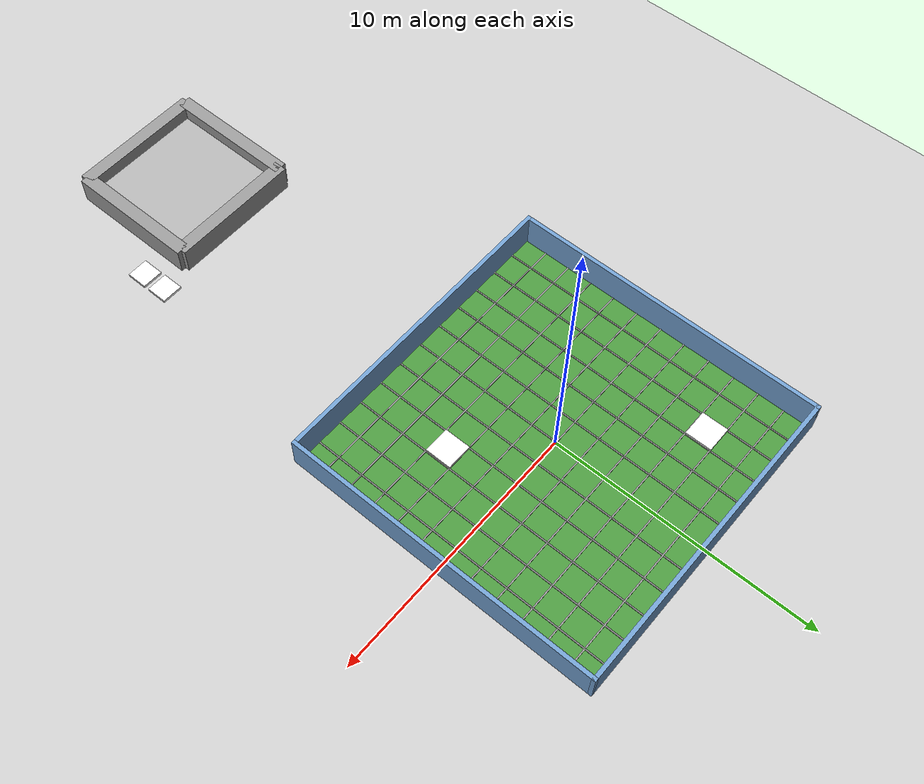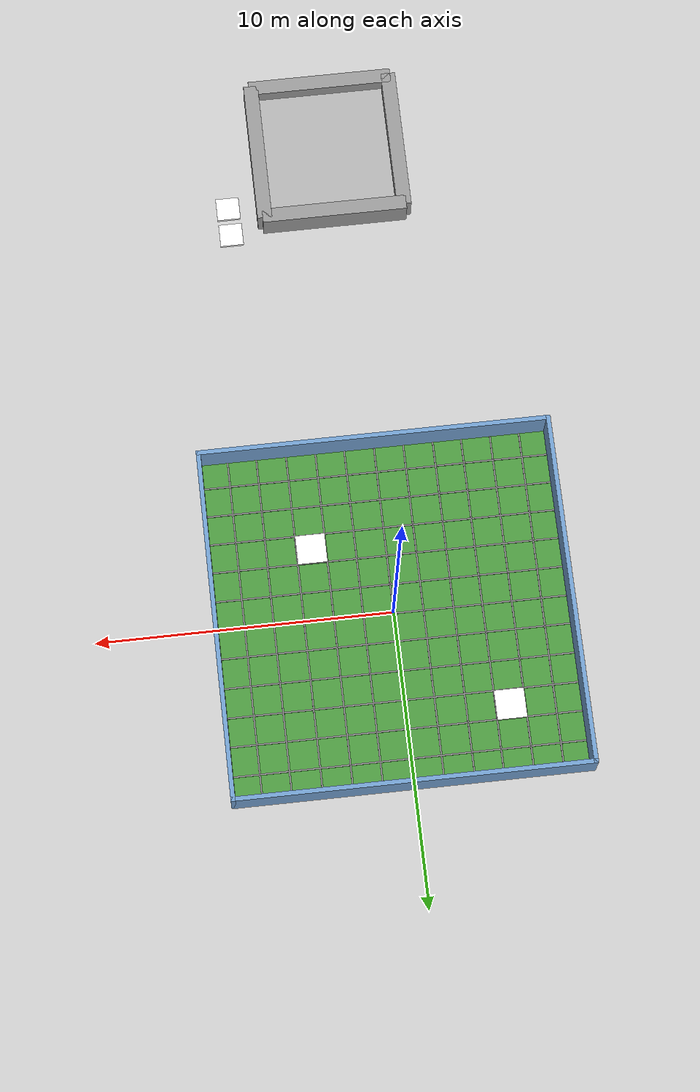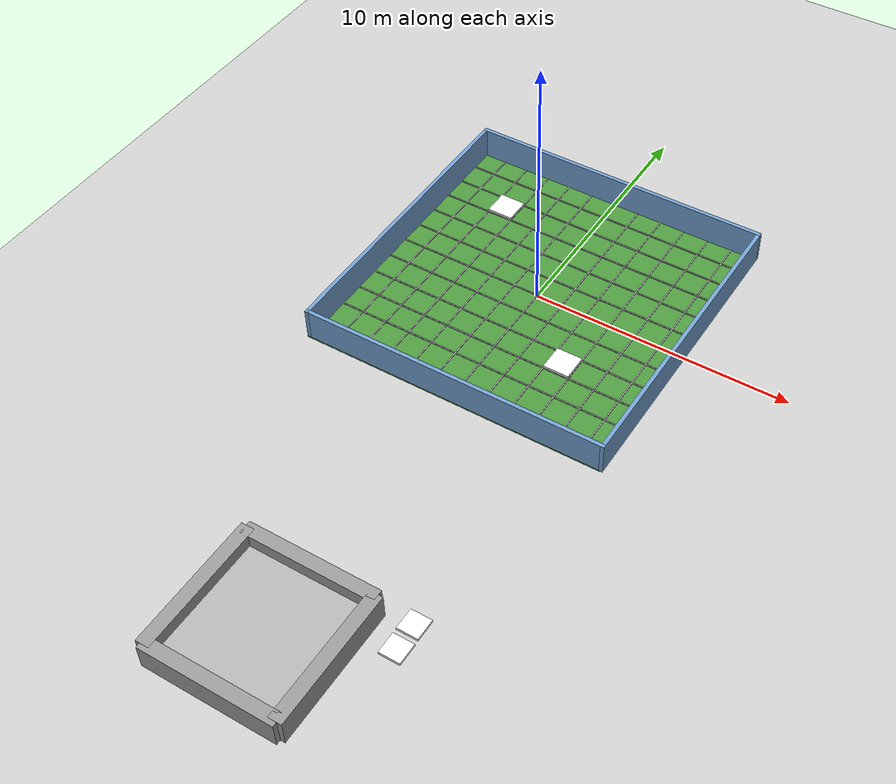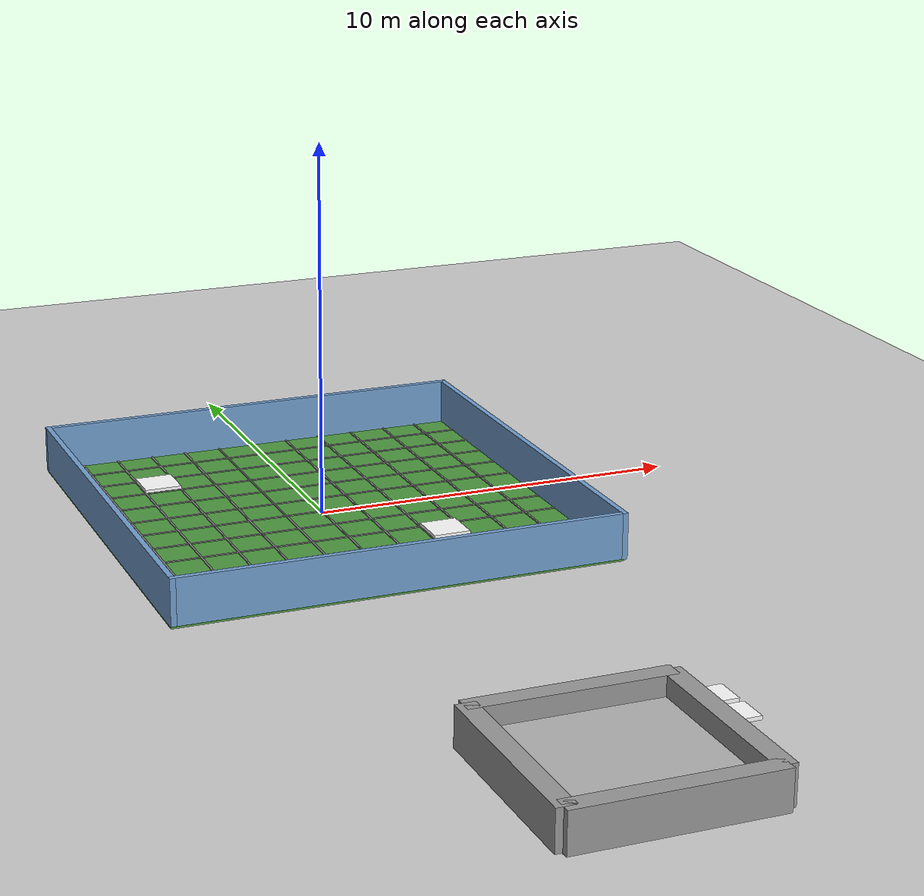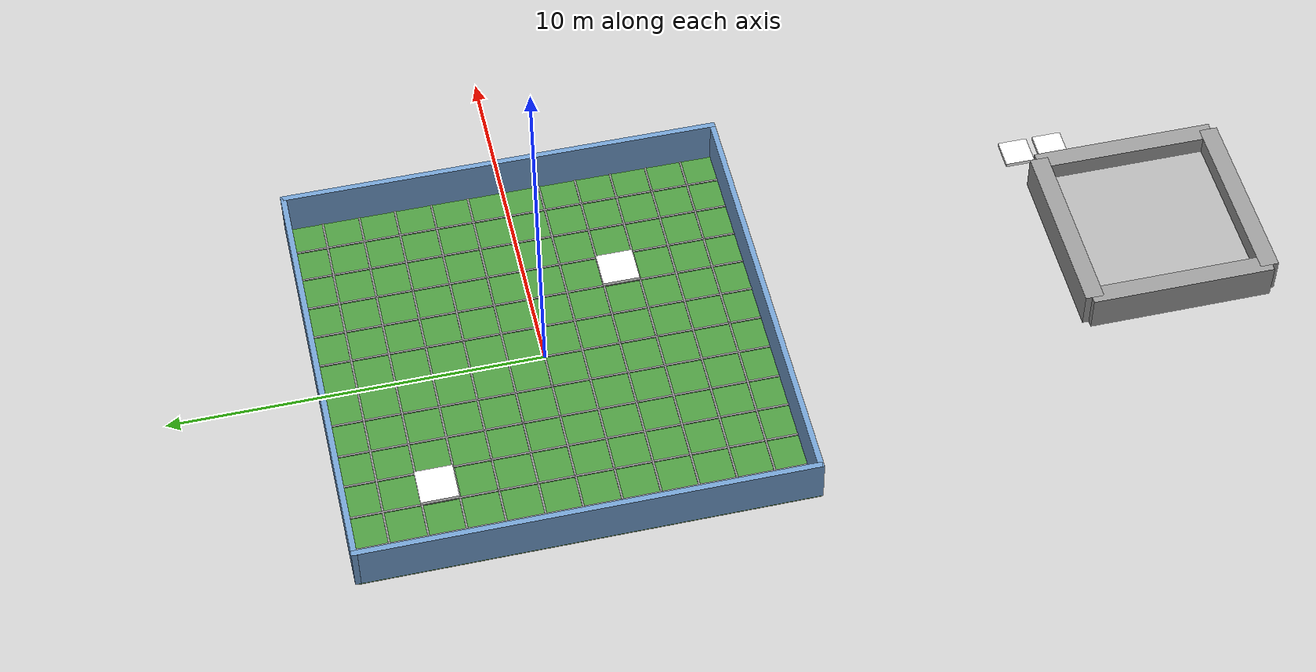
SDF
<sdf version="1.7">
 <world name="default">
  <light name="sun" type="directional">
   <pose>0 0 10 0 -0 0</pose>
   <diffuse>0.8 0.8 0.8 1</diffuse>
   <specular>0.2 0.2 0.2 1</specular>
   <attenuation>
    <range>1000</range>
    <constant>0.9</constant>
    <linear>0.01</linear>
    <quadratic>0.001</quadratic>
   </attenuation>
   <direction>-0.5 0.1 -0.9</direction>
   <spot><inner_angle>0</inner_angle><outer_angle>0</outer_angle><falloff>0</falloff></spot>
  </light>
  <model name="ground_plane">
   <static>1</static>
   <link name="link">
    <collision name="collision">
     <geometry><plane><normal>0 0 1</normal><size>100 100</size></plane></geometry>
     <surface><friction><ode><mu>100</mu><mu2>50</mu2></ode></friction></surface>
    </collision>
    <visual name="visual">
     <cast_shadows>0</cast_shadows>
     <geometry><plane><normal>0 0 1</normal><size>100 100</size></plane></geometry>
     <material>
      <script><uri>file://media/materials/scripts/gazebo.material</uri><name>Gazebo/Grey</name></script>
     </material>
    </visual>
   </link>
  </model>
  <gravity>0 0 -9.8</gravity>
  <magnetic_field>6e-06 2.3e-05 -4.2e-05</magnetic_field>
  <atmosphere type="adiabatic"/>
  <physics type="ode">
   <max_step_size>0.001</max_step_size>
   <real_time_factor>1</real_time_factor>
   <real_time_update_rate>1000</real_time_update_rate>
  </physics>
  <scene><ambient>0.4 0.4 0.4 1</ambient><background>0.7 0.7 0.7 1</background><shadows>1</shadows></scene>
  <spherical_coordinates>
   <surface_model>EARTH_WGS84</surface_model>
   <latitude_deg>0</latitude_deg>
   <longitude_deg>0</longitude_deg>
   <elevation>0</elevation>
   <heading_deg>0</heading_deg>
  </spherical_coordinates>
  <model name="12mline">
   <pose>0.012878 -1.47108 0 0 -0 0</pose>
   <link name="Wall_0">
    <collision name="Wall_0_Collision">
     <geometry><box><size>11.9 0.05 0.05</size></box></geometry>
     <pose>0 0 0.025 0 -0 0</pose>
    </collision>
    <visual name="Wall_0_Visual">
     <pose>0 0 0.025 0 -0 0</pose>
     <geometry><box><size>11.9 0.05 0.05</size></box></geometry>
     <material>
      <script><uri>file://media/materials/scripts/gazebo.material</uri><name>Gazebo/Grey</name></script>
      <ambient>1 1 1 1</ambient>
     </material>
     <meta><layer>0</layer></meta>
    </visual>
    <pose>-0 -1.5175 0 0 -0 0</pose>
   </link>
   <static>1</static>
  </model>
  <model name="12mline_clone">
   <pose>0.03266 -2.46463 0 0 -0 0</pose>
   <link name="Wall_0">
    <collision name="Wall_0_Collision">
     <geometry><box><size>11.9 0.05 0.05</size></box></geometry>
     <pose>0 0 0.025 0 -0 0</pose>
    </collision>
    <visual name="Wall_0_Visual">
     <pose>0 0 0.025 0 -0 0</pose>
     <geometry><box><size>11.9 0.05 0.05</size></box></geometry>
     <material>
      <script><uri>file://media/materials/scripts/gazebo.material</uri><name>Gazebo/Grey</name></script>
      <ambient>1 1 1 1</ambient>
     </material>
     <meta><layer>0</layer></meta>
    </visual>
    <pose>-0 -1.5175 0 0 -0 0</pose>
   </link>
   <static>1</static>
  </model>
  <model name="12mline_clone_0">
   <pose>0.03702 -3.4556 0 0 -0 0</pose>
   <link name="Wall_0">
    <collision name="Wall_0_Collision">
     <geometry><box><size>11.9 0.05 0.05</size></box></geometry>
     <pose>0 0 0.025 0 -0 0</pose>
    </collision>
    <visual name="Wall_0_Visual">
     <pose>0 0 0.025 0 -0 0</pose>
     <geometry><box><size>11.9 0.05 0.05</size></box></geometry>
     <material>
      <script><uri>file://media/materials/scripts/gazebo.material</uri><name>Gazebo/Grey</name></script>
      <ambient>1 1 1 1</ambient>
     </material>
     <meta><layer>0</layer></meta>
    </visual>
    <pose>-0 -1.5175 0 0 -0 0</pose>
   </link>
   <static>1</static>
  </model>
  <model name="12mline_clone_1">
   <pose>0.035837 -0.48382 0 0 -0 0</pose>
   <link name="Wall_0">
    <collision name="Wall_0_Collision">
     <geometry><box><size>11.9 0.05 0.05</size></box></geometry>
     <pose>0 0 0.025 0 -0 0</pose>
    </collision>
    <visual name="Wall_0_Visual">
     <pose>0 0 0.025 0 -0 0</pose>
     <geometry><box><size>11.9 0.05 0.05</size></box></geometry>
     <material>
      <script><uri>file://media/materials/scripts/gazebo.material</uri><name>Gazebo/Grey</name></script>
      <ambient>1 1 1 1</ambient>
     </material>
     <meta><layer>0</layer></meta>
    </visual>
    <pose>-0 -1.5175 0 0 -0 0</pose>
   </link>
   <static>1</static>
  </model>
  <model name="12mline_clone_2">
   <pose>0.034915 0.526566 0 0 -0 0</pose>
   <link name="Wall_0">
    <collision name="Wall_0_Collision">
     <geometry><box><size>11.9 0.05 0.05</size></box></geometry>
     <pose>0 0 0.025 0 -0 0</pose>
    </collision>
    <visual name="Wall_0_Visual">
     <pose>0 0 0.025 0 -0 0</pose>
     <geometry><box><size>11.9 0.05 0.05</size></box></geometry>
     <material>
      <script><uri>file://media/materials/scripts/gazebo.material</uri><name>Gazebo/Grey</name></script>
      <ambient>1 1 1 1</ambient>
     </material>
     <meta><layer>0</layer></meta>
    </visual>
    <pose>-0 -1.5175 0 0 -0 0</pose>
   </link>
   <static>1</static>
  </model>
  <model name="12mline_clone_3">
   <pose>-0.027708 1.53824 0 0 -0 0</pose>
   <link name="Wall_0">
    <collision name="Wall_0_Collision">
     <geometry><box><size>11.9 0.05 0.05</size></box></geometry>
     <pose>0 0 0.025 0 -0 0</pose>
    </collision>
    <visual name="Wall_0_Visual">
     <pose>0 0 0.025 0 -0 0</pose>
     <geometry><box><size>11.9 0.05 0.05</size></box></geometry>
     <material>
      <script><uri>file://media/materials/scripts/gazebo.material</uri><name>Gazebo/Grey</name></script>
      <ambient>1 1 1 1</ambient>
     </material>
     <meta><layer>0</layer></meta>
    </visual>
    <pose>-0 -1.5175 0 0 -0 0</pose>
   </link>
   <static>1</static>
  </model>
  <model name="12mline_clone_4">
   <pose>0.000681 2.50871 0 0 -0 0</pose>
   <link name="Wall_0">
    <collision name="Wall_0_Collision">
     <geometry><box><size>11.9 0.05 0.05</size></box></geometry>
     <pose>0 0 0.025 0 -0 0</pose>
    </collision>
    <visual name="Wall_0_Visual">
     <pose>0 0 0.025 0 -0 0</pose>
     <geometry><box><size>11.9 0.05 0.05</size></box></geometry>
     <material>
      <script><uri>file://media/materials/scripts/gazebo.material</uri><name>Gazebo/Grey</name></script>
      <ambient>1 1 1 1</ambient>
     </material>
     <meta><layer>0</layer></meta>
    </visual>
    <pose>-0 -1.5175 0 0 -0 0</pose>
   </link>
   <static>1</static>
  </model>
  <model name="12mline_clone_5">
   <pose>0.024976 3.52373 0 0 -0 0</pose>
   <link name="Wall_0">
    <collision name="Wall_0_Collision">
     <geometry><box><size>11.9 0.05 0.05</size></box></geometry>
     <pose>0 0 0.025 0 -0 0</pose>
    </collision>
    <visual name="Wall_0_Visual">
     <pose>0 0 0.025 0 -0 0</pose>
     <geometry><box><size>11.9 0.05 0.05</size></box></geometry>
     <material>
      <script><uri>file://media/materials/scripts/gazebo.material</uri><name>Gazebo/Grey</name></script>
      <ambient>1 1 1 1</ambient>
     </material>
     <meta><layer>0</layer></meta>
    </visual>
    <pose>-0 -1.5175 0 0 -0 0</pose>
   </link>
   <static>1</static>
  </model>
  <model name="12mline_clone_6">
   <pose>0.037837 4.52987 0 0 -0 0</pose>
   <link name="Wall_0">
    <collision name="Wall_0_Collision">
     <geometry><box><size>11.9 0.05 0.05</size></box></geometry>
     <pose>0 0 0.025 0 -0 0</pose>
    </collision>
    <visual name="Wall_0_Visual">
     <pose>0 0 0.025 0 -0 0</pose>
     <geometry><box><size>11.9 0.05 0.05</size></box></geometry>
     <material>
      <script><uri>file://media/materials/scripts/gazebo.material</uri><name>Gazebo/Grey</name></script>
      <ambient>1 1 1 1</ambient>
     </material>
     <meta><layer>0</layer></meta>
    </visual>
    <pose>-0 -1.5175 0 0 -0 0</pose>
   </link>
   <static>1</static>
  </model>
  <model name="12mline_clone_7">
   <pose>0.037957 5.51078 0 0 -0 0</pose>
   <link name="Wall_0">
    <collision name="Wall_0_Collision">
     <geometry><box><size>11.9 0.05 0.05</size></box></geometry>
     <pose>0 0 0.025 0 -0 0</pose>
    </collision>
    <visual name="Wall_0_Visual">
     <pose>0 0 0.025 0 -0 0</pose>
     <geometry><box><size>11.9 0.05 0.05</size></box></geometry>
     <material>
      <script><uri>file://media/materials/scripts/gazebo.material</uri><name>Gazebo/Grey</name></script>
      <ambient>1 1 1 1</ambient>
     </material>
     <meta><layer>0</layer></meta>
    </visual>
    <pose>-0 -1.5175 0 0 -0 0</pose>
   </link>
   <static>1</static>
  </model>
  <model name="12mline_clone_8">
   <pose>0.034269 6.51188 0 0 -0 0</pose>
   <link name="Wall_0">
    <collision name="Wall_0_Collision">
     <geometry><box><size>11.9 0.05 0.05</size></box></geometry>
     <pose>0 0 0.025 0 -0 0</pose>
    </collision>
    <visual name="Wall_0_Visual">
     <pose>0 0 0.025 0 -0 0</pose>
     <geometry><box><size>11.9 0.05 0.05</size></box></geometry>
     <material>
      <script><uri>file://media/materials/scripts/gazebo.material</uri><name>Gazebo/Grey</name></script>
      <ambient>1 1 1 1</ambient>
     </material>
     <meta><layer>0</layer></meta>
    </visual>
    <pose>-0 -1.5175 0 0 -0 0</pose>
   </link>
   <static>1</static>
  </model>
  <model name="12mline_clone_2_clone">
   <pose>3.47623 -0.007807 0 0 -0 1.5708</pose>
   <link name="Wall_0">
    <collision name="Wall_0_Collision">
     <geometry><box><size>11.9 0.05 0.05</size></box></geometry>
     <pose>0 0 0.025 0 -0 0</pose>
    </collision>
    <visual name="Wall_0_Visual">
     <pose>0 0 0.025 0 -0 0</pose>
     <geometry><box><size>11.9 0.05 0.05</size></box></geometry>
     <material>
      <script><uri>file://media/materials/scripts/gazebo.material</uri><name>Gazebo/Grey</name></script>
      <ambient>1 1 1 1</ambient>
     </material>
     <meta><layer>0</layer></meta>
    </visual>
    <pose>-0 -1.5175 0 0 -0 0</pose>
   </link>
   <static>1</static>
  </model>
  <model name="12mline_clone_2_clone_clone">
   <pose>2.49754 0.008091 0 0 -0 1.5708</pose>
   <link name="Wall_0">
    <collision name="Wall_0_Collision">
     <geometry><box><size>11.9 0.05 0.05</size></box></geometry>
     <pose>0 0 0.025 0 -0 0</pose>
    </collision>
    <visual name="Wall_0_Visual">
     <pose>0 0 0.025 0 -0 0</pose>
     <geometry><box><size>11.9 0.05 0.05</size></box></geometry>
     <material>
      <script><uri>file://media/materials/scripts/gazebo.material</uri><name>Gazebo/Grey</name></script>
      <ambient>1 1 1 1</ambient>
     </material>
     <meta><layer>0</layer></meta>
    </visual>
    <pose>-0 -1.5175 0 0 -0 0</pose>
   </link>
   <static>1</static>
  </model>
  <model name="12mline_clone_2_clone_clone_0">
   <pose>1.48274 0.008893 0 0 -0 1.5708</pose>
   <link name="Wall_0">
    <collision name="Wall_0_Collision">
     <geometry><box><size>11.9 0.05 0.05</size></box></geometry>
     <pose>0 0 0.025 0 -0 0</pose>
    </collision>
    <visual name="Wall_0_Visual">
     <pose>0 0 0.025 0 -0 0</pose>
     <geometry><box><size>11.9 0.05 0.05</size></box></geometry>
     <material>
      <script><uri>file://media/materials/scripts/gazebo.material</uri><name>Gazebo/Grey</name></script>
      <ambient>1 1 1 1</ambient>
     </material>
     <meta><layer>0</layer></meta>
    </visual>
    <pose>-0 -1.5175 0 0 -0 0</pose>
   </link>
   <static>1</static>
  </model>
  <model name="12mline_clone_2_clone_clone_1">
   <pose>0.48124 0.02937 0 0 -0 1.5708</pose>
   <link name="Wall_0">
    <collision name="Wall_0_Collision">
     <geometry><box><size>11.9 0.05 0.05</size></box></geometry>
     <pose>0 0 0.025 0 -0 0</pose>
    </collision>
    <visual name="Wall_0_Visual">
     <pose>0 0 0.025 0 -0 0</pose>
     <geometry><box><size>11.9 0.05 0.05</size></box></geometry>
     <material>
      <script><uri>file://media/materials/scripts/gazebo.material</uri><name>Gazebo/Grey</name></script>
      <ambient>1 1 1 1</ambient>
     </material>
     <meta><layer>0</layer></meta>
    </visual>
    <pose>-0 -1.5175 0 0 -0 0</pose>
   </link>
   <static>1</static>
  </model>
  <model name="12mline_clone_2_clone_clone_2">
   <pose>-0.50736 0.0182 0 0 -0 1.5708</pose>
   <link name="Wall_0">
    <collision name="Wall_0_Collision">
     <geometry><box><size>11.9 0.05 0.05</size></box></geometry>
     <pose>0 0 0.025 0 -0 0</pose>
    </collision>
    <visual name="Wall_0_Visual">
     <pose>0 0 0.025 0 -0 0</pose>
     <geometry><box><size>11.9 0.05 0.05</size></box></geometry>
     <material>
      <script><uri>file://media/materials/scripts/gazebo.material</uri><name>Gazebo/Grey</name></script>
      <ambient>1 1 1 1</ambient>
     </material>
     <meta><layer>0</layer></meta>
    </visual>
    <pose>-0 -1.5175 0 0 -0 0</pose>
   </link>
   <static>1</static>
  </model>
  <model name="12mline_clone_2_clone_clone_3">
   <pose>-1.52449 0.005384 0 0 -0 1.5708</pose>
   <link name="Wall_0">
    <collision name="Wall_0_Collision">
     <geometry><box><size>11.9 0.05 0.05</size></box></geometry>
     <pose>0 0 0.025 0 -0 0</pose>
    </collision>
    <visual name="Wall_0_Visual">
     <pose>0 0 0.025 0 -0 0</pose>
     <geometry><box><size>11.9 0.05 0.05</size></box></geometry>
     <material>
      <script><uri>file://media/materials/scripts/gazebo.material</uri><name>Gazebo/Grey</name></script>
      <ambient>1 1 1 1</ambient>
     </material>
     <meta><layer>0</layer></meta>
    </visual>
    <pose>-0 -1.5175 0 0 -0 0</pose>
   </link>
   <static>1</static>
  </model>
  <model name="12mline_clone_2_clone_clone_4">
   <pose>-2.52889 -0.018254 0 0 -0 1.5708</pose>
   <link name="Wall_0">
    <collision name="Wall_0_Collision">
     <geometry><box><size>11.9 0.05 0.05</size></box></geometry>
     <pose>0 0 0.025 0 -0 0</pose>
    </collision>
    <visual name="Wall_0_Visual">
     <pose>0 0 0.025 0 -0 0</pose>
     <geometry><box><size>11.9 0.05 0.05</size></box></geometry>
     <material>
      <script><uri>file://media/materials/scripts/gazebo.material</uri><name>Gazebo/Grey</name></script>
      <ambient>1 1 1 1</ambient>
     </material>
     <meta><layer>0</layer></meta>
    </visual>
    <pose>-0 -1.5175 0 0 -0 0</pose>
   </link>
   <static>1</static>
  </model>
  <model name="12mline_clone_2_clone_clone_5">
   <pose>-3.53931 0.045198 0 0 -0 1.5708</pose>
   <link name="Wall_0">
    <collision name="Wall_0_Collision">
     <geometry><box><size>11.9 0.05 0.05</size></box></geometry>
     <pose>0 0 0.025 0 -0 0</pose>
    </collision>
    <visual name="Wall_0_Visual">
     <pose>0 0 0.025 0 -0 0</pose>
     <geometry><box><size>11.9 0.05 0.05</size></box></geometry>
     <material>
      <script><uri>file://media/materials/scripts/gazebo.material</uri><name>Gazebo/Grey</name></script>
      <ambient>1 1 1 1</ambient>
     </material>
     <meta><layer>0</layer></meta>
    </visual>
    <pose>-0 -1.5175 0 0 -0 0</pose>
   </link>
   <static>1</static>
  </model>
  <model name="12mline_clone_2_clone_clone_6">
   <pose>-4.50804 -0.003517 0 0 -0 1.5708</pose>
   <link name="Wall_0">
    <collision name="Wall_0_Collision">
     <geometry><box><size>11.9 0.05 0.05</size></box></geometry>
     <pose>0 0 0.025 0 -0 0</pose>
    </collision>
    <visual name="Wall_0_Visual">
     <pose>0 0 0.025 0 -0 0</pose>
     <geometry><box><size>11.9 0.05 0.05</size></box></geometry>
     <material>
      <script><uri>file://media/materials/scripts/gazebo.material</uri><name>Gazebo/Grey</name></script>
      <ambient>1 1 1 1</ambient>
     </material>
     <meta><layer>0</layer></meta>
    </visual>
    <pose>-0 -1.5175 0 0 -0 0</pose>
   </link>
   <static>1</static>
  </model>
  <model name="12mline_clone_2_clone_clone_7">
   <pose>-5.50138 0.014093 0 0 -0 1.5708</pose>
   <link name="Wall_0">
    <collision name="Wall_0_Collision">
     <geometry><box><size>11.9 0.05 0.05</size></box></geometry>
     <pose>0 0 0.025 0 -0 0</pose>
    </collision>
    <visual name="Wall_0_Visual">
     <pose>0 0 0.025 0 -0 0</pose>
     <geometry><box><size>11.9 0.05 0.05</size></box></geometry>
     <material>
      <script><uri>file://media/materials/scripts/gazebo.material</uri><name>Gazebo/Grey</name></script>
      <ambient>1 1 1 1</ambient>
     </material>
     <meta><layer>0</layer></meta>
    </visual>
    <pose>-0 -1.5175 0 0 -0 0</pose>
   </link>
   <static>1</static>
  </model>
  <model name="12mline_clone_2_clone_clone_8">
   <pose>-6.49334 -0.021412 0 0 -0 1.5708</pose>
   <link name="Wall_0">
    <collision name="Wall_0_Collision">
     <geometry><box><size>11.9 0.05 0.05</size></box></geometry>
     <pose>0 0 0.025 0 -0 0</pose>
    </collision>
    <visual name="Wall_0_Visual">
     <pose>0 0 0.025 0 -0 0</pose>
     <geometry><box><size>11.9 0.05 0.05</size></box></geometry>
     <material>
      <script><uri>file://media/materials/scripts/gazebo.material</uri><name>Gazebo/Grey</name></script>
      <ambient>1 1 1 1</ambient>
     </material>
     <meta><layer>0</layer></meta>
    </visual>
    <pose>-0 -1.5175 0 0 -0 0</pose>
   </link>
   <static>1</static>
  </model>
  <model name="grass_12mby12m">
   <link name="link_0">
    <inertial>
     <mass>1</mass>
     <inertia><ixx>1</ixx><ixy>0</ixy><ixz>0</ixz><iyy>1</iyy><iyz>0</iyz><izz>1</izz></inertia>
    </inertial>
    <visual name="visual">
     <geometry><box><size>11.9 11.9 0.05</size></box></geometry>
     <material>
      <lighting>1</lighting>
      <script>
       <uri>model://grass_100by100/materials/scripts</uri>
       <uri>model://grass_100by100/materials/textures</uri>
       <name>model/GrassTexture</name>
      </script>
      <shader type="pixel"><normal_map>__default__</normal_map></shader>
      <ambient>0.3 0.3 0.3 1</ambient>
      <diffuse>0.7 0.7 0.7 1</diffuse>
      <specular>0.01 0.01 0.01 1</specular>
      <emissive>0 0 0 1</emissive>
     </material>
     <cast_shadows>0</cast_shadows>
    </visual>
   </link>
   <static>1</static>
   <pose>-0.027047 -0.032885 0 0 -0 0</pose>
  </model>
  <model name="marker1mby1m">
   <link name="link_1">
    <inertial>
     <mass>2000</mass>
     <inertia><ixx>333.333</ixx><ixy>0</ixy><ixz>0</ixz><iyy>333.333</iyy><iyz>0</iyz><izz>333.333</izz></inertia>
    </inertial>
    <visual name="visual">
     <pose>0 0 0.5 0 -0 0</pose>
     <geometry><box><size>0 0 0</size></box></geometry>
     <material>
      <lighting>1</lighting>
      <script><uri>file://media/materials/scripts/marker2by2.material</uri><name>Custom/TopTexture</name></script>
      <shader type="pixel"><normal_map>__default__</normal_map></shader>
      <ambient>1 1 1 1</ambient>
      <diffuse>1 1 1 1</diffuse>
      <specular>1 1 1 1</specular>
      <emissive>1 1 1 1</emissive>
     </material>
    </visual>
    <collision name="collision">
     <geometry><box><size>1 1 1</size></box></geometry>
     <surface>
      <friction>
       <ode><mu>1</mu><mu2>1</mu2><fdir1>0 0 0</fdir1><slip1>0</slip1><slip2>0</slip2></ode>
       <torsional>
        <coefficient>1</coefficient>
        <patch_radius>0</patch_radius>
        <surface_radius>0</surface_radius>
        <use_patch_radius>1</use_patch_radius>
        <ode><slip>0</slip></ode>
       </torsional>
      </friction>
      <bounce><restitution_coefficient>0</restitution_coefficient><threshold>1e+06</threshold></bounce>
      <contact>
       <collide_without_contact>0</collide_without_contact>
       <collide_without_contact_bitmask>1</collide_without_contact_bitmask>
       <collide_bitmask>1</collide_bitmask>
       <ode>
        <soft_cfm>0</soft_cfm>
        <soft_erp>0.2</soft_erp>
        <kp>1e+13</kp>
        <kd>1</kd>
        <max_vel>0.01</max_vel>
        <min_depth>0</min_depth>
       </ode>
       <bullet>
        <split_impulse>1</split_impulse>
        <split_impulse_penetration_threshold>-0.01</split_impulse_penetration_threshold>
        <soft_cfm>0</soft_cfm>
        <soft_erp>0.2</soft_erp>
        <kp>1e+13</kp>
        <kd>1</kd>
       </bullet>
      </contact>
     </surface>
    </collision>
   </link>
   <static>0</static>
   <pose>1.36323 1.77681 0.550001 4e-06 3e-06 0.029475</pose>
  </model>
  <model name="helipad">
   <link name="link_0">
    <visual name="visual">
     <geometry><box><size>5 5 1</size></box></geometry>
     <material>
      <lighting>1</lighting>
      <script>
       <uri>model://helipad/materials/scripts</uri>
       <uri>model://helipad/materials/textures</uri>
       <name>model/HelipadTexture</name>
      </script>
      <shader type="pixel"><normal_map>__default__</normal_map></shader>
      <ambient>0.3 0.3 0.3 1</ambient>
      <diffuse>0.7 0.7 0.7 1</diffuse>
      <specular>0.01 0.01 0.01 1</specular>
      <emissive>0 0 0 1</emissive>
     </material>
     <cast_shadows>0</cast_shadows>
    </visual>
   </link>
   <static>1</static>
   <pose>0.426608 -16.7752 0 0 -0 0</pose>
  </model>
  <model name="boundaryforhelipad5mby5mby1m">
   <link name="Wall_0">
    <pose>0 0.7325 0 0 -0 0</pose>
    <inertial>
     <mass>1</mass>
     <inertia><ixx>1</ixx><ixy>0</ixy><ixz>0</ixz><iyy>1</iyy><iyz>0</iyz><izz>1</izz></inertia>
    </inertial>
    <visual name="Wall_0_Visual">
     <pose>0 0 0.5 0 -0 0</pose>
     <geometry><box><size>5 0.5 1</size></box></geometry>
     <material>
      <script><uri>file://media/materials/scripts/gazebo.material</uri><name>Gazebo/Grey</name></script>
      <ambient>0 0 0 1</ambient>
      <shader type="pixel"><normal_map>__default__</normal_map></shader>
      <diffuse>0.7 0.7 0.7 1</diffuse>
      <specular>0.01 0.01 0.01 1</specular>
      <emissive>0 0 0 1</emissive>
     </material>
     <meta><layer>0</layer></meta>
    </visual>
    <collision name="Wall_0_Collision">
     <pose>0 0 0.5 0 -0 0</pose>
     <geometry><box><size>5 0.15 1</size></box></geometry>
     <surface>
      <friction>
       <ode><mu>1</mu><mu2>1</mu2><fdir1>0 0 0</fdir1><slip1>0</slip1><slip2>0</slip2></ode>
       <torsional>
        <coefficient>1</coefficient>
        <patch_radius>0</patch_radius>
        <surface_radius>0</surface_radius>
        <use_patch_radius>1</use_patch_radius>
        <ode><slip>0</slip></ode>
       </torsional>
      </friction>
      <bounce><restitution_coefficient>0</restitution_coefficient><threshold>1e+06</threshold></bounce>
      <contact>
       <collide_without_contact>0</collide_without_contact>
       <collide_without_contact_bitmask>1</collide_without_contact_bitmask>
       <collide_bitmask>1</collide_bitmask>
       <ode>
        <soft_cfm>0</soft_cfm>
        <soft_erp>0.2</soft_erp>
        <kp>1e+13</kp>
        <kd>1</kd>
        <max_vel>0.01</max_vel>
        <min_depth>0</min_depth>
       </ode>
       <bullet>
        <split_impulse>1</split_impulse>
        <split_impulse_penetration_threshold>-0.01</split_impulse_penetration_threshold>
        <soft_cfm>0</soft_cfm>
        <soft_erp>0.2</soft_erp>
        <kp>1e+13</kp>
        <kd>1</kd>
       </bullet>
      </contact>
     </surface>
    </collision>
   </link>
   <link name="Wall_1">
    <pose>2.425 -1.6925 0 0 0 -1.5708</pose>
    <inertial>
     <mass>1</mass>
     <inertia><ixx>1</ixx><ixy>0</ixy><ixz>0</ixz><iyy>1</iyy><iyz>0</iyz><izz>1</izz></inertia>
    </inertial>
    <visual name="Wall_1_Visual">
     <pose>0 0 0.5 0 -0 0</pose>
     <geometry><box><size>5 0.5 1</size></box></geometry>
     <material>
      <script><uri>file://media/materials/scripts/gazebo.material</uri><name>Gazebo/Grey</name></script>
      <ambient>0 0 0 1</ambient>
      <shader type="pixel"><normal_map>__default__</normal_map></shader>
      <diffuse>0.7 0.7 0.7 1</diffuse>
      <specular>0.01 0.01 0.01 1</specular>
      <emissive>0 0 0 1</emissive>
     </material>
     <meta><layer>0</layer></meta>
    </visual>
    <collision name="Wall_1_Collision">
     <pose>0 0 0.5 0 -0 0</pose>
     <geometry><box><size>5 0.15 1</size></box></geometry>
     <surface>
      <friction>
       <ode><mu>1</mu><mu2>1</mu2><fdir1>0 0 0</fdir1><slip1>0</slip1><slip2>0</slip2></ode>
       <torsional>
        <coefficient>1</coefficient>
        <patch_radius>0</patch_radius>
        <surface_radius>0</surface_radius>
        <use_patch_radius>1</use_patch_radius>
        <ode><slip>0</slip></ode>
       </torsional>
      </friction>
      <bounce><restitution_coefficient>0</restitution_coefficient><threshold>1e+06</threshold></bounce>
      <contact>
       <collide_without_contact>0</collide_without_contact>
       <collide_without_contact_bitmask>1</collide_without_contact_bitmask>
       <collide_bitmask>1</collide_bitmask>
       <ode>
        <soft_cfm>0</soft_cfm>
        <soft_erp>0.2</soft_erp>
        <kp>1e+13</kp>
        <kd>1</kd>
        <max_vel>0.01</max_vel>
        <min_depth>0</min_depth>
       </ode>
       <bullet>
        <split_impulse>1</split_impulse>
        <split_impulse_penetration_threshold>-0.01</split_impulse_penetration_threshold>
        <soft_cfm>0</soft_cfm>
        <soft_erp>0.2</soft_erp>
        <kp>1e+13</kp>
        <kd>1</kd>
       </bullet>
      </contact>
     </surface>
    </collision>
   </link>
   <link name="Wall_3">
    <pose>0 -4.1175 0 0 -0 3.14159</pose>
    <inertial>
     <mass>1</mass>
     <inertia><ixx>1</ixx><ixy>0</ixy><ixz>0</ixz><iyy>1</iyy><iyz>0</iyz><izz>1</izz></inertia>
    </inertial>
    <visual name="Wall_3_Visual">
     <pose>0 0 0.5 0 -0 0</pose>
     <geometry><box><size>5 0.5 1</size></box></geometry>
     <material>
      <script><uri>file://media/materials/scripts/gazebo.material</uri><name>Gazebo/Grey</name></script>
      <ambient>0 0 0 1</ambient>
      <shader type="pixel"><normal_map>__default__</normal_map></shader>
      <diffuse>0.7 0.7 0.7 1</diffuse>
      <specular>0.01 0.01 0.01 1</specular>
      <emissive>0 0 0 1</emissive>
     </material>
     <meta><layer>0</layer></meta>
    </visual>
    <collision name="Wall_3_Collision">
     <pose>0 0 0.5 0 -0 0</pose>
     <geometry><box><size>5 0.15 1</size></box></geometry>
     <surface>
      <friction>
       <ode><mu>1</mu><mu2>1</mu2><fdir1>0 0 0</fdir1><slip1>0</slip1><slip2>0</slip2></ode>
       <torsional>
        <coefficient>1</coefficient>
        <patch_radius>0</patch_radius>
        <surface_radius>0</surface_radius>
        <use_patch_radius>1</use_patch_radius>
        <ode><slip>0</slip></ode>
       </torsional>
      </friction>
      <bounce><restitution_coefficient>0</restitution_coefficient><threshold>1e+06</threshold></bounce>
      <contact>
       <collide_without_contact>0</collide_without_contact>
       <collide_without_contact_bitmask>1</collide_without_contact_bitmask>
       <collide_bitmask>1</collide_bitmask>
       <ode>
        <soft_cfm>0</soft_cfm>
        <soft_erp>0.2</soft_erp>
        <kp>1e+13</kp>
        <kd>1</kd>
        <max_vel>0.01</max_vel>
        <min_depth>0</min_depth>
       </ode>
       <bullet>
        <split_impulse>1</split_impulse>
        <split_impulse_penetration_threshold>-0.01</split_impulse_penetration_threshold>
        <soft_cfm>0</soft_cfm>
        <soft_erp>0.2</soft_erp>
        <kp>1e+13</kp>
        <kd>1</kd>
       </bullet>
      </contact>
     </surface>
    </collision>
   </link>
   <link name="Wall_8">
    <pose>-2.425 -1.6925 0 0 0 -1.5708</pose>
    <inertial>
     <mass>1</mass>
     <inertia><ixx>1</ixx><ixy>0</ixy><ixz>0</ixz><iyy>1</iyy><iyz>0</iyz><izz>1</izz></inertia>
    </inertial>
    <visual name="Wall_8_Visual">
     <pose>0 0 0.5 0 -0 0</pose>
     <geometry><box><size>5 0.5 1</size></box></geometry>
     <material>
      <script><uri>file://media/materials/scripts/gazebo.material</uri><name>Gazebo/Grey</name></script>
      <ambient>0 0 0 1</ambient>
      <shader type="pixel"><normal_map>__default__</normal_map></shader>
      <diffuse>0.7 0.7 0.7 1</diffuse>
      <specular>0.01 0.01 0.01 1</specular>
      <emissive>0 0 0 1</emissive>
     </material>
     <meta><layer>0</layer></meta>
    </visual>
    <collision name="Wall_8_Collision">
     <pose>0 0 0.5 0 -0 0</pose>
     <geometry><box><size>5 0.15 1</size></box></geometry>
     <surface>
      <friction>
       <ode><mu>1</mu><mu2>1</mu2><fdir1>0 0 0</fdir1><slip1>0</slip1><slip2>0</slip2></ode>
       <torsional>
        <coefficient>1</coefficient>
        <patch_radius>0</patch_radius>
        <surface_radius>0</surface_radius>
        <use_patch_radius>1</use_patch_radius>
        <ode><slip>0</slip></ode>
       </torsional>
      </friction>
      <bounce><restitution_coefficient>0</restitution_coefficient><threshold>1e+06</threshold></bounce>
      <contact>
       <collide_without_contact>0</collide_without_contact>
       <collide_without_contact_bitmask>1</collide_without_contact_bitmask>
       <collide_bitmask>1</collide_bitmask>
       <ode>
        <soft_cfm>0</soft_cfm>
        <soft_erp>0.2</soft_erp>
        <kp>1e+13</kp>
        <kd>1</kd>
        <max_vel>0.01</max_vel>
        <min_depth>0</min_depth>
       </ode>
       <bullet>
        <split_impulse>1</split_impulse>
        <split_impulse_penetration_threshold>-0.01</split_impulse_penetration_threshold>
        <soft_cfm>0</soft_cfm>
        <soft_erp>0.2</soft_erp>
        <kp>1e+13</kp>
        <kd>1</kd>
       </bullet>
      </contact>
     </surface>
    </collision>
   </link>
   <static>1</static>
   <pose>0.417072 -15.0818 0 0 -0 0</pose>
  </model>
  <model name="boundary12mby12m">
   <link name="Wall_0">
    <pose>1.2e-05 -5.92498 0 0 -0 0</pose>
    <inertial>
     <mass>1</mass>
     <inertia><ixx>1</ixx><ixy>0</ixy><ixz>0</ixz><iyy>1</iyy><iyz>0</iyz><izz>1</izz></inertia>
    </inertial>
    <visual name="Wall_0_Visual">
     <pose>0 0 0.625 0 -0 0</pose>
     <geometry><box><size>12 0.15 1.25</size></box></geometry>
     <material>
      <script><uri>file://media/materials/scripts/gazebo.material</uri><name>Gazebo/Grey</name></script>
      <ambient>0.447 0.624 0.812 1</ambient>
      <shader type="pixel"><normal_map>__default__</normal_map></shader>
      <diffuse>0 0 0 1</diffuse>
      <specular>0 0 0 1</specular>
      <emissive>0 0 0 1</emissive>
     </material>
     <meta><layer>0</layer></meta>
    </visual>
    <collision name="Wall_0_Collision">
     <pose>0 0 0.625 0 -0 0</pose>
     <geometry><box><size>12 0.15 1.25</size></box></geometry>
     <surface>
      <friction>
       <ode><mu>1</mu><mu2>1</mu2><fdir1>0 0 0</fdir1><slip1>0</slip1><slip2>0</slip2></ode>
       <torsional>
        <coefficient>1</coefficient>
        <patch_radius>0</patch_radius>
        <surface_radius>0</surface_radius>
        <use_patch_radius>1</use_patch_radius>
        <ode><slip>0</slip></ode>
       </torsional>
      </friction>
      <bounce><restitution_coefficient>0</restitution_coefficient><threshold>1e+06</threshold></bounce>
      <contact>
       <collide_without_contact>0</collide_without_contact>
       <collide_without_contact_bitmask>1</collide_without_contact_bitmask>
       <collide_bitmask>1</collide_bitmask>
       <ode>
        <soft_cfm>0</soft_cfm>
        <soft_erp>0.2</soft_erp>
        <kp>1e+13</kp>
        <kd>1</kd>
        <max_vel>0.01</max_vel>
        <min_depth>0</min_depth>
       </ode>
       <bullet>
        <split_impulse>1</split_impulse>
        <split_impulse_penetration_threshold>-0.01</split_impulse_penetration_threshold>
        <soft_cfm>0</soft_cfm>
        <soft_erp>0.2</soft_erp>
        <kp>1e+13</kp>
        <kd>1</kd>
       </bullet>
      </contact>
     </surface>
    </collision>
   </link>
   <link name="Wall_2">
    <pose>5.92501 1.7e-05 0 0 -0 1.5708</pose>
    <inertial>
     <mass>1</mass>
     <inertia><ixx>1</ixx><ixy>0</ixy><ixz>0</ixz><iyy>1</iyy><iyz>0</iyz><izz>1</izz></inertia>
    </inertial>
    <visual name="Wall_2_Visual">
     <pose>0 0 0.625 0 -0 0</pose>
     <geometry><box><size>12 0.15 1.25</size></box></geometry>
     <material>
      <script><uri>file://media/materials/scripts/gazebo.material</uri><name>Gazebo/Grey</name></script>
      <ambient>0.447 0.624 0.812 1</ambient>
      <shader type="pixel"><normal_map>__default__</normal_map></shader>
     </material>
     <meta><layer>0</layer></meta>
    </visual>
    <collision name="Wall_2_Collision">
     <pose>0 0 0.625 0 -0 0</pose>
     <geometry><box><size>12 0.15 1.25</size></box></geometry>
     <surface>
      <friction>
       <ode><mu>1</mu><mu2>1</mu2><fdir1>0 0 0</fdir1><slip1>0</slip1><slip2>0</slip2></ode>
       <torsional>
        <coefficient>1</coefficient>
        <patch_radius>0</patch_radius>
        <surface_radius>0</surface_radius>
        <use_patch_radius>1</use_patch_radius>
        <ode><slip>0</slip></ode>
       </torsional>
      </friction>
      <bounce><restitution_coefficient>0</restitution_coefficient><threshold>1e+06</threshold></bounce>
      <contact>
       <collide_without_contact>0</collide_without_contact>
       <collide_without_contact_bitmask>1</collide_without_contact_bitmask>
       <collide_bitmask>1</collide_bitmask>
       <ode>
        <soft_cfm>0</soft_cfm>
        <soft_erp>0.2</soft_erp>
        <kp>1e+13</kp>
        <kd>1</kd>
        <max_vel>0.01</max_vel>
        <min_depth>0</min_depth>
       </ode>
       <bullet>
        <split_impulse>1</split_impulse>
        <split_impulse_penetration_threshold>-0.01</split_impulse_penetration_threshold>
        <soft_cfm>0</soft_cfm>
        <soft_erp>0.2</soft_erp>
        <kp>1e+13</kp>
        <kd>1</kd>
       </bullet>
      </contact>
     </surface>
    </collision>
   </link>
   <link name="Wall_4">
    <pose>0 5.925 0 0 0 -3.14159</pose>
    <visual name="Wall_4_Visual">
     <pose>0 0 0.625 0 -0 0</pose>
     <geometry><box><size>12 0.15 1.25</size></box></geometry>
     <material>
      <script><uri>file://media/materials/scripts/gazebo.material</uri><name>Gazebo/Grey</name></script>
      <ambient>0.447059 0.623529 0.811765 1</ambient>
      <shader type="pixel"/>
     </material>
     <meta><layer>0</layer></meta>
    </visual>
    <collision name="Wall_4_Collision">
     <pose>0 0 0.625 0 -0 0</pose>
     <geometry><box><size>12 0.15 1.25</size></box></geometry>
     <surface>
      <friction>
       <ode><mu>1</mu><mu2>1</mu2><fdir1>0 0 0</fdir1><slip1>0</slip1><slip2>0</slip2></ode>
       <torsional>
        <coefficient>1</coefficient>
        <patch_radius>0</patch_radius>
        <surface_radius>0</surface_radius>
        <use_patch_radius>1</use_patch_radius>
        <ode><slip>0</slip></ode>
       </torsional>
      </friction>
      <bounce><restitution_coefficient>0</restitution_coefficient><threshold>1e+06</threshold></bounce>
      <contact>
       <collide_without_contact>0</collide_without_contact>
       <collide_without_contact_bitmask>1</collide_without_contact_bitmask>
       <collide_bitmask>1</collide_bitmask>
       <ode>
        <soft_cfm>0</soft_cfm>
        <soft_erp>0.2</soft_erp>
        <kp>1e+13</kp>
        <kd>1</kd>
        <max_vel>0.01</max_vel>
        <min_depth>0</min_depth>
       </ode>
       <bullet>
        <split_impulse>1</split_impulse>
        <split_impulse_penetration_threshold>-0.01</split_impulse_penetration_threshold>
        <soft_cfm>0</soft_cfm>
        <soft_erp>0.2</soft_erp>
        <kp>1e+13</kp>
        <kd>1</kd>
       </bullet>
      </contact>
     </surface>
    </collision>
   </link>
   <link name="Wall_6">
    <pose>-5.92501 -1.7e-05 0 0 0 -1.5708</pose>
    <visual name="Wall_6_Visual">
     <pose>0 0 0.625 0 -0 0</pose>
     <geometry><box><size>12 0.15 1.25</size></box></geometry>
     <material>
      <script><uri>file://media/materials/scripts/gazebo.material</uri><name>Gazebo/Grey</name></script>
      <ambient>0.447059 0.623529 0.811765 1</ambient>
      <shader type="pixel"/>
     </material>
     <meta><layer>0</layer></meta>
    </visual>
    <collision name="Wall_6_Collision">
     <pose>0 0 0.625 0 -0 0</pose>
     <geometry><box><size>12 0.15 1.25</size></box></geometry>
     <surface>
      <friction>
       <ode><mu>1</mu><mu2>1</mu2><fdir1>0 0 0</fdir1><slip1>0</slip1><slip2>0</slip2></ode>
       <torsional>
        <coefficient>1</coefficient>
        <patch_radius>0</patch_radius>
        <surface_radius>0</surface_radius>
        <use_patch_radius>1</use_patch_radius>
        <ode><slip>0</slip></ode>
       </torsional>
      </friction>
      <bounce><restitution_coefficient>0</restitution_coefficient><threshold>1e+06</threshold></bounce>
      <contact>
       <collide_without_contact>0</collide_without_contact>
       <collide_without_contact_bitmask>1</collide_without_contact_bitmask>
       <collide_bitmask>1</collide_bitmask>
       <ode>
        <soft_cfm>0</soft_cfm>
        <soft_erp>0.2</soft_erp>
        <kp>1e+13</kp>
        <kd>1</kd>
        <max_vel>0.01</max_vel>
        <min_depth>0</min_depth>
       </ode>
       <bullet>
        <split_impulse>1</split_impulse>
        <split_impulse_penetration_threshold>-0.01</split_impulse_penetration_threshold>
        <soft_cfm>0</soft_cfm>
        <soft_erp>0.2</soft_erp>
        <kp>1e+13</kp>
        <kd>1</kd>
       </bullet>
      </contact>
     </surface>
    </collision>
   </link>
   <static>1</static>
   <pose>0.021377 0.02098 0 0 -0 0</pose>
  </model>
  <model name="sprojmarker80cmby80cm">
   <link name="link_0">
    <self_collide>1</self_collide>
    <kinematic>1</kinematic>
    <inertial>
     <mass>0</mass>
     <inertia>
      <ixx>0.026666</ixx>
      <ixy>0</ixy>
      <ixz>0</ixz>
      <iyy>0.026666</iyy>
      <iyz>0</iyz>
      <izz>0.026666</izz>
     </inertia>
    </inertial>
    <visual name="visual">
     <geometry><box><size>0.8 0.8 0.1</size></box></geometry>
     <material>
      <lighting>1</lighting>
      <script>
       <uri>model://sprojmarker80cmby80cm/materials/scripts</uri>
       <uri>model://sprojmarker80cmby80cm/materials/textures</uri>
       <name>model/SprojTexture</name>
      </script>
      <shader type="pixel"><normal_map>__default__</normal_map></shader>
      <ambient>1 1 1 1</ambient>
      <diffuse>1 1 1 1</diffuse>
      <specular>1 1 1 1</specular>
      <emissive>1 1 1 1</emissive>
     </material>
     <cast_shadows>0</cast_shadows>
    </visual>
    <collision name="collision_0">
     <geometry><box><size>0.8 0.8 0.1</size></box></geometry>
     <surface>
      <friction>
       <ode><mu>1</mu><mu2>1</mu2><fdir1>0 0 0</fdir1><slip1>0</slip1><slip2>0</slip2></ode>
       <torsional>
        <coefficient>1</coefficient>
        <patch_radius>0</patch_radius>
        <surface_radius>0</surface_radius>
        <use_patch_radius>1</use_patch_radius>
        <ode><slip>0</slip></ode>
       </torsional>
      </friction>
      <bounce><restitution_coefficient>0</restitution_coefficient><threshold>1e+06</threshold></bounce>
      <contact>
       <collide_without_contact>0</collide_without_contact>
       <collide_without_contact_bitmask>1</collide_without_contact_bitmask>
       <collide_bitmask>1</collide_bitmask>
       <ode>
        <soft_cfm>0</soft_cfm>
        <soft_erp>0.2</soft_erp>
        <kp>1e+13</kp>
        <kd>1</kd>
        <max_vel>0.01</max_vel>
        <min_depth>0</min_depth>
       </ode>
       <bullet>
        <split_impulse>1</split_impulse>
        <split_impulse_penetration_threshold>-0.01</split_impulse_penetration_threshold>
        <soft_cfm>0</soft_cfm>
        <soft_erp>0.2</soft_erp>
        <kp>1e+13</kp>
        <kd>1</kd>
       </bullet>
      </contact>
     </surface>
    </collision>
   </link>
   <static>1</static>
   <pose>4.07123 -15.1024 0.077623 0 -0 0</pose>
  </model>
  <model name="sprojmarker80cmby80cm_clone">
   <link name="link_0">
    <self_collide>1</self_collide>
    <kinematic>1</kinematic>
    <inertial>
     <mass>0</mass>
     <inertia>
      <ixx>0.026666</ixx>
      <ixy>0</ixy>
      <ixz>0</ixz>
      <iyy>0.026666</iyy>
      <iyz>0</iyz>
      <izz>0.026666</izz>
     </inertia>
    </inertial>
    <visual name="visual">
     <geometry><box><size>0.8 0.8 0.1</size></box></geometry>
     <material>
      <lighting>1</lighting>
      <script>
       <uri>model://sprojmarker80cmby80cm/materials/scripts</uri>
       <uri>model://sprojmarker80cmby80cm/materials/textures</uri>
       <name>model/SprojTexture</name>
      </script>
      <shader type="pixel"><normal_map>__default__</normal_map></shader>
      <ambient>1 1 1 1</ambient>
      <diffuse>1 1 1 1</diffuse>
      <specular>1 1 1 1</specular>
      <emissive>1 1 1 1</emissive>
     </material>
     <cast_shadows>0</cast_shadows>
    </visual>
    <collision name="collision_0">
     <geometry><box><size>0.8 0.8 0.1</size></box></geometry>
     <surface>
      <friction>
       <ode><mu>1</mu><mu2>1</mu2><fdir1>0 0 0</fdir1><slip1>0</slip1><slip2>0</slip2></ode>
       <torsional>
        <coefficient>1</coefficient>
        <patch_radius>0</patch_radius>
        <surface_radius>0</surface_radius>
        <use_patch_radius>1</use_patch_radius>
        <ode><slip>0</slip></ode>
       </torsional>
      </friction>
      <bounce><restitution_coefficient>0</restitution_coefficient><threshold>1e+06</threshold></bounce>
      <contact>
       <collide_without_contact>0</collide_without_contact>
       <collide_without_contact_bitmask>1</collide_without_contact_bitmask>
       <collide_bitmask>1</collide_bitmask>
       <ode>
        <soft_cfm>0</soft_cfm>
        <soft_erp>0.2</soft_erp>
        <kp>1e+13</kp>
        <kd>1</kd>
        <max_vel>0.01</max_vel>
        <min_depth>0</min_depth>
       </ode>
       <bullet>
        <split_impulse>1</split_impulse>
        <split_impulse_penetration_threshold>-0.01</split_impulse_penetration_threshold>
        <soft_cfm>0</soft_cfm>
        <soft_erp>0.2</soft_erp>
        <kp>1e+13</kp>
        <kd>1</kd>
       </bullet>
      </contact>
     </surface>
    </collision>
   </link>
   <static>1</static>
   <pose>4.05752 -14.1214 0.077623 0 -0 0</pose>
  </model>
  <model name="marker1mby1m_1">
   <link name="link_1">
    <inertial>
     <mass>2000</mass>
     <inertia><ixx>333.333</ixx><ixy>0</ixy><ixz>0</ixz><iyy>333.333</iyy><iyz>0</iyz><izz>333.333</izz></inertia>
    </inertial>
    <pose>0.023354 0.075603 0 0 -0 0</pose>
    <self_collide>1</self_collide>
    <kinematic>1</kinematic>
    <visual name="visual">
     <pose>0 0 0.5 0 -0 0</pose>
     <geometry><box><size>1 1 0.1</size></box></geometry>
     <material>
      <lighting>1</lighting>
      <script><uri>file://media/materials/scripts/marker2by2.material</uri><name>Custom/TopTexture</name></script>
      <shader type="pixel"><normal_map>__default__</normal_map></shader>
      <ambient>1 1 1 1</ambient>
      <diffuse>1 1 1 1</diffuse>
      <specular>1 1 1 1</specular>
      <emissive>1 1 1 1</emissive>
     </material>
    </visual>
    <collision name="collision">
     <geometry><box><size>1 1 0.1</size></box></geometry>
     <surface>
      <friction>
       <ode><mu>1</mu><mu2>1</mu2><fdir1>0 0 0</fdir1><slip1>0</slip1><slip2>0</slip2></ode>
       <torsional>
        <coefficient>1</coefficient>
        <patch_radius>0</patch_radius>
        <surface_radius>0</surface_radius>
        <use_patch_radius>1</use_patch_radius>
        <ode><slip>0</slip></ode>
       </torsional>
      </friction>
      <bounce><restitution_coefficient>0</restitution_coefficient><threshold>1e+06</threshold></bounce>
      <contact>
       <collide_without_contact>0</collide_without_contact>
       <collide_without_contact_bitmask>1</collide_without_contact_bitmask>
       <collide_bitmask>1</collide_bitmask>
       <ode>
        <soft_cfm>0</soft_cfm>
        <soft_erp>0.2</soft_erp>
        <kp>1e+13</kp>
        <kd>1</kd>
        <max_vel>0.01</max_vel>
        <min_depth>0</min_depth>
       </ode>
       <bullet>
        <split_impulse>1</split_impulse>
        <split_impulse_penetration_threshold>-0.01</split_impulse_penetration_threshold>
        <soft_cfm>0</soft_cfm>
        <soft_erp>0.2</soft_erp>
        <kp>1e+13</kp>
        <kd>1</kd>
       </bullet>
      </contact>
     </surface>
    </collision>
   </link>
   <static>0</static>
   <pose>-3.50977 3.44721 -0.41559 0 -0 0</pose>
  </model>
  <model name="marker1mby1m_1_clone">
   <link name="link_1">
    <inertial>
     <mass>2000</mass>
     <inertia><ixx>333.333</ixx><ixy>0</ixy><ixz>0</ixz><iyy>333.333</iyy><iyz>0</iyz><izz>333.333</izz></inertia>
    </inertial>
    <pose>0.023354 0.075603 0 0 -0 0</pose>
    <self_collide>1</self_collide>
    <kinematic>1</kinematic>
    <visual name="visual">
     <pose>0 0 0.5 0 -0 0</pose>
     <geometry><box><size>1 1 0.1</size></box></geometry>
     <material>
      <lighting>1</lighting>
      <script><uri>file://media/materials/scripts/marker2by2.material</uri><name>Custom/TopTexture</name></script>
      <shader type="pixel"><normal_map>__default__</normal_map></shader>
      <ambient>1 1 1 1</ambient>
      <diffuse>1 1 1 1</diffuse>
      <specular>1 1 1 1</specular>
      <emissive>1 1 1 1</emissive>
     </material>
    </visual>
    <collision name="collision">
     <geometry><box><size>1 1 0.1</size></box></geometry>
     <surface>
      <friction>
       <ode><mu>1</mu><mu2>1</mu2><fdir1>0 0 0</fdir1><slip1>0</slip1><slip2>0</slip2></ode>
       <torsional>
        <coefficient>1</coefficient>
        <patch_radius>0</patch_radius>
        <surface_radius>0</surface_radius>
        <use_patch_radius>1</use_patch_radius>
        <ode><slip>0</slip></ode>
       </torsional>
      </friction>
      <bounce><restitution_coefficient>0</restitution_coefficient><threshold>1e+06</threshold></bounce>
      <contact>
       <collide_without_contact>0</collide_without_contact>
       <collide_without_contact_bitmask>1</collide_without_contact_bitmask>
       <collide_bitmask>1</collide_bitmask>
       <ode>
        <soft_cfm>0</soft_cfm>
        <soft_erp>0.2</soft_erp>
        <kp>1e+13</kp>
        <kd>1</kd>
        <max_vel>0.01</max_vel>
        <min_depth>0</min_depth>
       </ode>
       <bullet>
        <split_impulse>1</split_impulse>
        <split_impulse_penetration_threshold>-0.01</split_impulse_penetration_threshold>
        <soft_cfm>0</soft_cfm>
        <soft_erp>0.2</soft_erp>
        <kp>1e+13</kp>
        <kd>1</kd>
       </bullet>
      </contact>
     </surface>
    </collision>
   </link>
   <static>0</static>
   <pose>2.47269 -2.55762 -0.41559 0 -0 0</pose>
  </model>
 </world>
</sdf>
